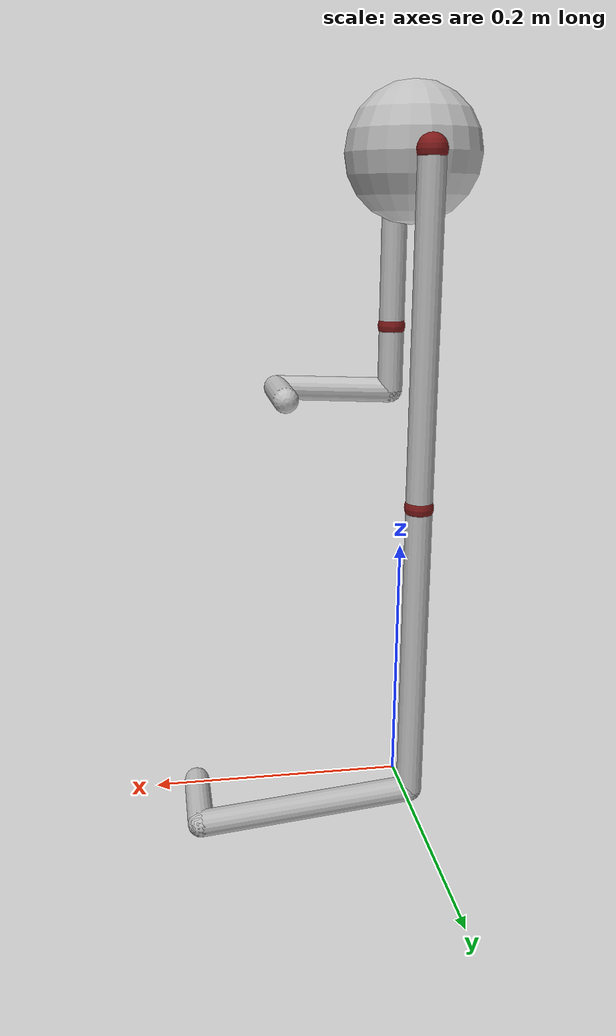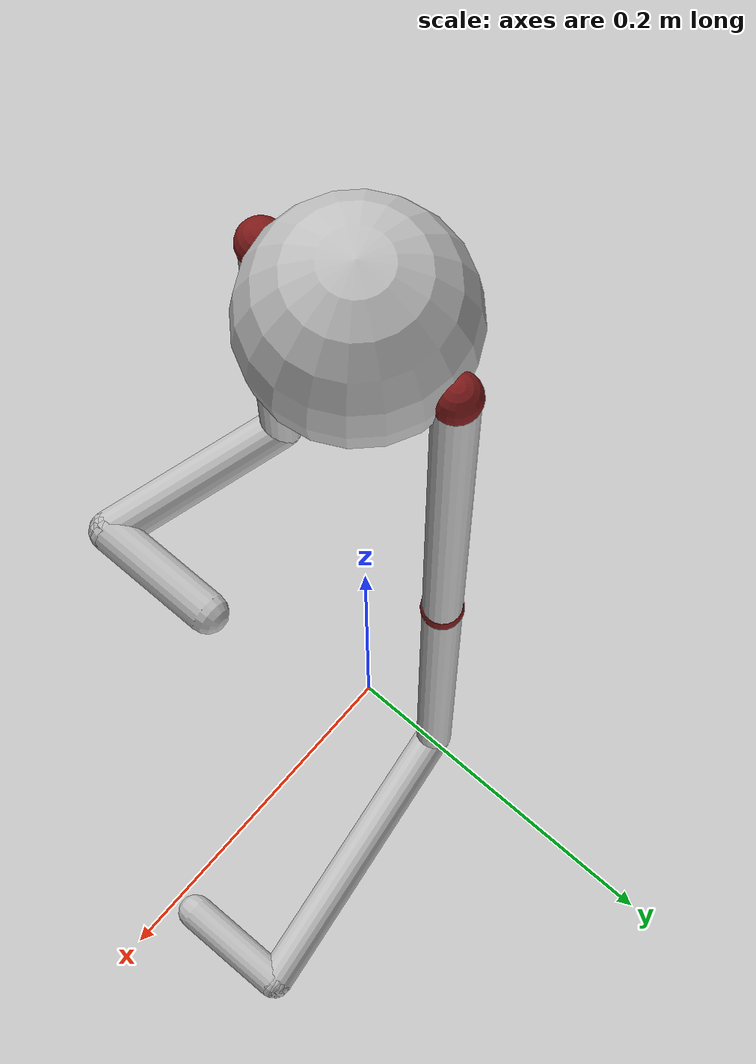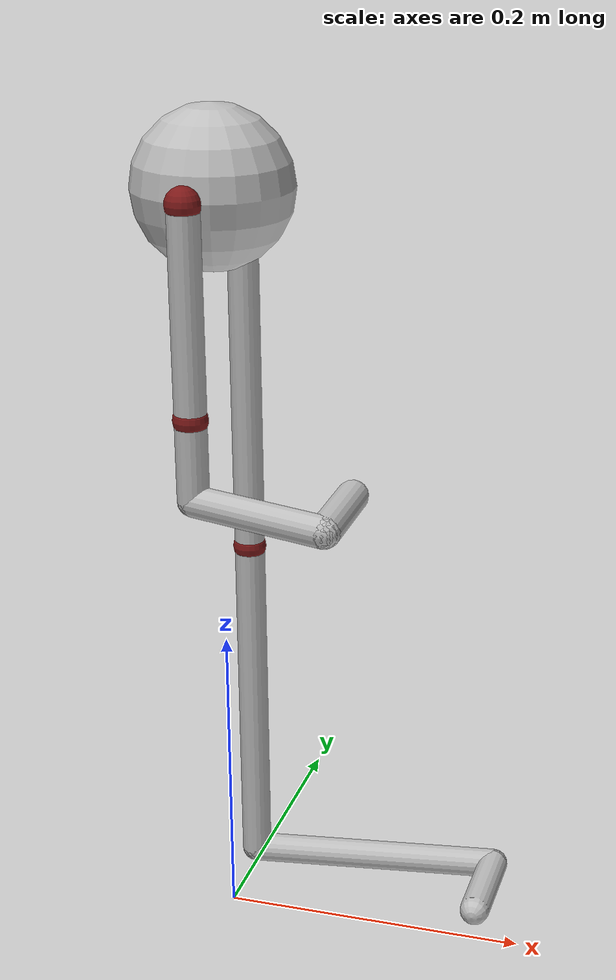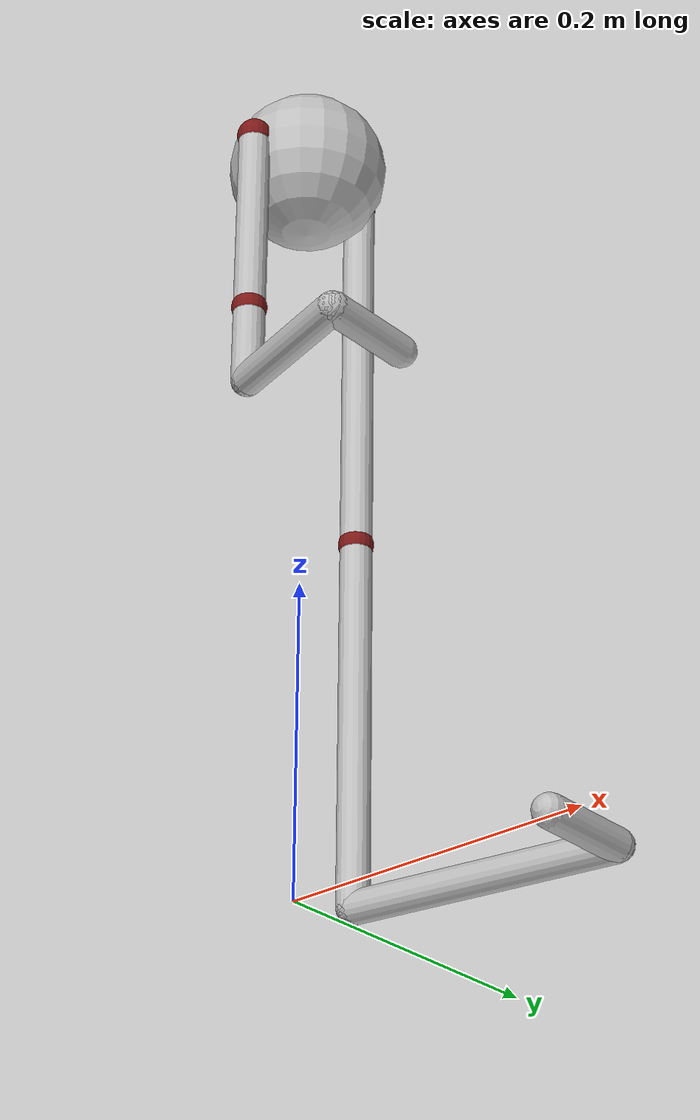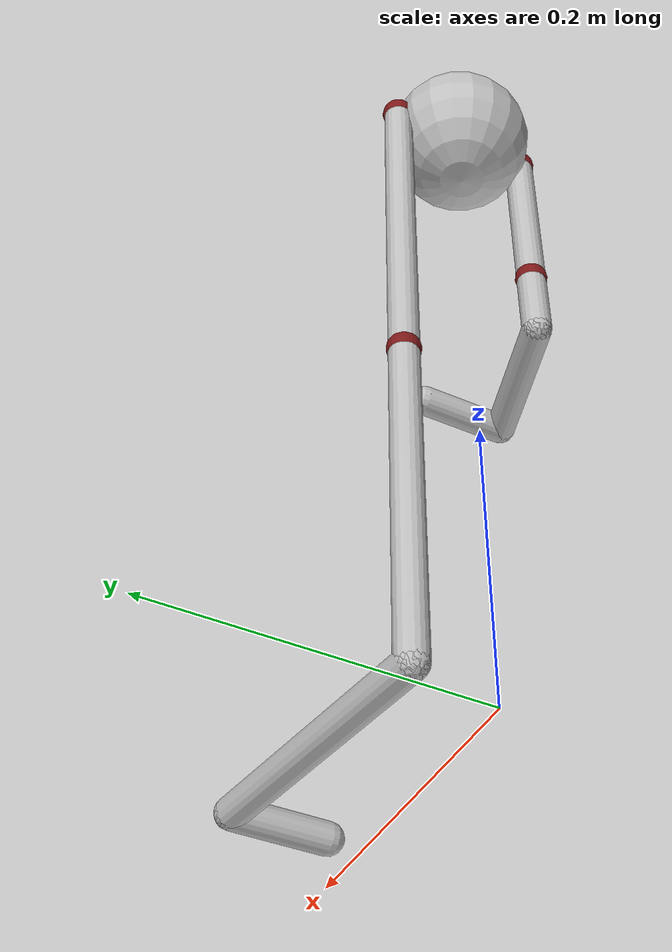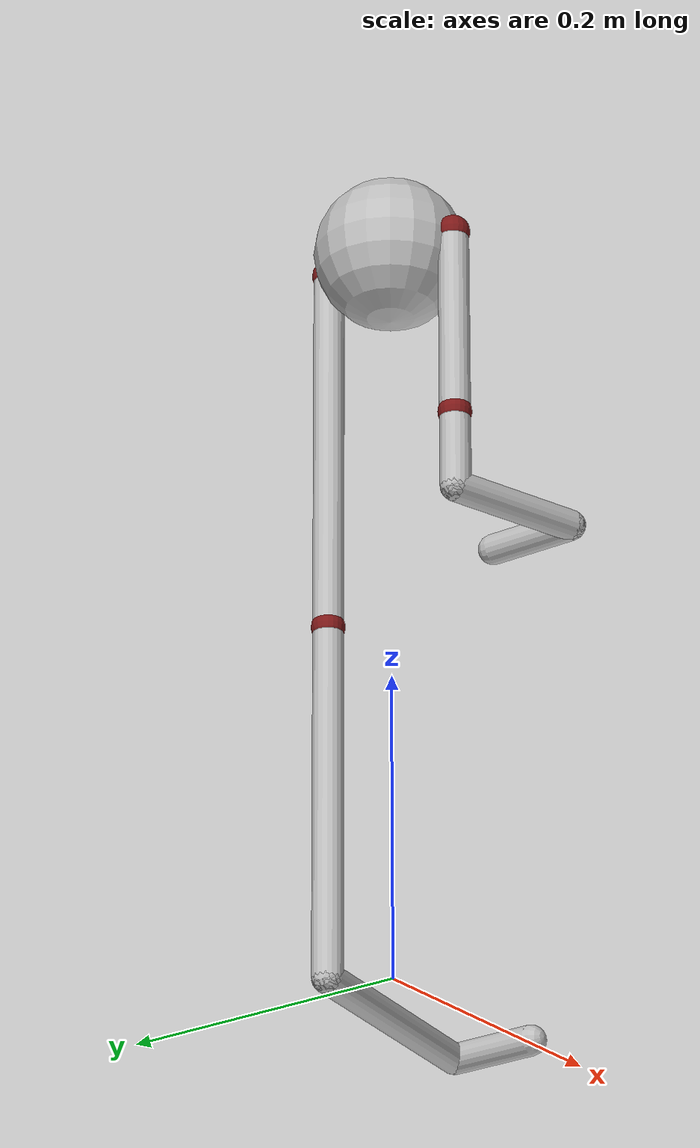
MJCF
<?xml version="1.0" ?>
<mujoco>
    <default>
        <joint armature="0.0" damping="0.01" type="hinge" range="-150 0" axis="0 -1 0"/>
        <geom condim="3" friction="1.5 1.0 1.0" margin="0.001"/>
        <default class="motor">
            <cylinder gear="100" ctrllimited="true" ctrlrange="-1 1"/>
        </default>
    </default>
    <worldbody>
        <body name="Base" pos="0.0 0.0 0.498880929837746">
            <joint type="free"/>
            <geom type="sphere" rgba="0.75 0.75 0.75 1.0" size="0.05" mass="0.02"/>
            <body name="rod_0.1" pos="0.0 -0.05 -0.0647251323270818">
                <geom name="geom_0.1" type="capsule" fromto="-0.0 -0.0 0.0647251323270818 0.0 0.0 -0.0647251323270818" size="0.01" rgba="0.75 0.75 0.75 1.0" density="159.15494309189535"/>
                <site name="site_0.1" pos="0 0 0" quat="0.7071067811865476 -0.0 0.7071067811865476 0.0"/>
                <joint name="joint_Base=rod_0.1" pos="-0.0 -0.0 0.0647251323270818" range="-45 45"/>
                <body name="p0" pos="-0.0 -0.0 0.0647251323270818">
                    <geom type="sphere" size="0.011000000000000001" rgba="0.5 0.1 0.1 1.0" density="23873.2414637843"/>
                    <site name="p0"/>
                </body>
                <body name="rod_1.2" pos="0.0 0.0 -0.09071107731625658">
                    <geom name="geom_1.2" type="capsule" fromto="-0.0 -0.0 0.02598594498917478 0.0 0.0 -0.02598594498917478" size="0.01" rgba="0.75 0.75 0.75 1.0" density="159.15494309189535"/>
                    <site name="site_1.2" pos="0 0 0" quat="0.7071067811865476 -0.0 0.7071067811865476 0.0"/>
                    <joint name="joint_rod_0.1=rod_1.2" pos="-0.0 -0.0 0.02598594498917478" range="-150 0"/>
                    <body name="p1" pos="-0.0 -0.0 0.02598594498917478">
                        <geom type="sphere" size="0.011000000000000001" rgba="0.5 0.1 0.1 1.0" density="23873.2414637843"/>
                        <site name="p1"/>
                    </body>
                    <body name="rod_2.3" pos="0.04519836004416103 -0.012500000000000004 -0.02598594498917478">
                        <geom name="geom_2.3" type="capsule" fromto="-0.04519836004416103 0.012500000000000004 -0.0 0.04519836004416103 -0.012500000000000004 0.0" size="0.01" rgba="0.75 0.75 0.75 1.0" density="159.15494309189535"/>
                        <site name="site_2.3" pos="0 0 0" quat="0.9909137933898128 0.0 0.0 -0.1344985281325097"/>
                        <body name="rod_3.4" pos="0.04519836004416103 0.017499999999999995 0.0">
                            <geom name="geom_3.4" type="capsule" fromto="-0.0 -0.03 -0.0 0.0 0.03 0.0" size="0.01" rgba="0.75 0.75 0.75 1.0" density="159.15494309189535"/>
                            <site name="site_3.4" pos="0 0 0" quat="0.7071067811865476 0.0 0.0 0.7071067811865476"/>
                        </body>
                    </body>
                </body>
            </body>
            <body name="rod_5.6" pos="0.0 0.05 -0.1258892964007334">
                <geom name="geom_5.6" type="capsule" fromto="-0.0 -0.0 0.1258892964007334 0.0 0.0 -0.1258892964007334" size="0.01" rgba="0.75 0.75 0.75 1.0" density="159.15494309189535"/>
                <site name="site_5.6" pos="0 0 0" quat="0.7071067811865476 -0.0 0.7071067811865476 0.0"/>
                <joint name="joint_Base=rod_5.6" pos="-0.0 -0.0 0.1258892964007334" range="-45 45"/>
                <body name="p5" pos="-0.0 -0.0 0.1258892964007334">
                    <geom type="sphere" size="0.011000000000000001" rgba="0.5 0.1 0.1 1.0" density="23873.2414637843"/>
                    <site name="p5"/>
                </body>
                <body name="rod_6.7" pos="0.0 0.0 -0.243690464918873">
                    <geom name="geom_6.7" type="capsule" fromto="-0.0 -0.0 0.1178011685181396 0.0 0.0 -0.1178011685181396" size="0.01" rgba="0.75 0.75 0.75 1.0" density="159.15494309189535"/>
                    <site name="site_6.7" pos="0 0 0" quat="0.7071067811865476 -0.0 0.7071067811865476 0.0"/>
                    <joint name="joint_rod_5.6=rod_6.7" pos="-0.0 -0.0 0.1178011685181396" range="-150 0"/>
                    <body name="p6" pos="-0.0 -0.0 0.1178011685181396">
                        <geom type="sphere" size="0.011000000000000001" rgba="0.5 0.1 0.1 1.0" density="23873.2414637843"/>
                        <site name="p6"/>
                    </body>
                    <body name="rod_7.8" pos="0.08388914565069797 0.012500000000000004 -0.1178011685181396">
                        <geom name="geom_7.8" type="capsule" fromto="-0.08388914565069797 -0.012500000000000004 -0.0 0.08388914565069797 0.012500000000000004 0.0" size="0.01" rgba="0.75 0.75 0.75 1.0" density="159.15494309189535"/>
                        <site name="site_7.8" pos="0 0 0" quat="0.9972662854497278 0.0 0.0 0.0738915144336751"/>
                        <body name="rod_8.9" pos="0.08388914565069797 -0.017499999999999995 0.0">
                            <geom name="geom_8.9" type="capsule" fromto="-0.0 0.03 -0.0 0.0 -0.03 0.0" size="0.01" rgba="0.75 0.75 0.75 1.0" density="159.15494309189535"/>
                            <site name="site_8.9" pos="0 0 0" quat="0.7071067811865476 0.0 0.0 -0.7071067811865476"/>
                        </body>
                    </body>
                </body>
            </body>
        </body>
    </worldbody>
    <actuator/>
    <sensor>
        <accelerometer site="site_0.1"/>
        <gyro site="site_0.1"/>
        <magnetometer site="site_0.1"/>
        <accelerometer site="site_1.2"/>
        <gyro site="site_1.2"/>
        <magnetometer site="site_1.2"/>
        <accelerometer site="site_2.3"/>
        <gyro site="site_2.3"/>
        <magnetometer site="site_2.3"/>
        <accelerometer site="site_3.4"/>
        <gyro site="site_3.4"/>
        <magnetometer site="site_3.4"/>
        <accelerometer site="site_5.6"/>
        <gyro site="site_5.6"/>
        <magnetometer site="site_5.6"/>
        <accelerometer site="site_6.7"/>
        <gyro site="site_6.7"/>
        <magnetometer site="site_6.7"/>
        <accelerometer site="site_7.8"/>
        <gyro site="site_7.8"/>
        <magnetometer site="site_7.8"/>
        <accelerometer site="site_8.9"/>
        <gyro site="site_8.9"/>
        <magnetometer site="site_8.9"/>
    </sensor>
    <contact>
        <pair geom1="geom_0.1" geom2="floor"/>
        <pair geom1="geom_1.2" geom2="floor"/>
        <pair geom1="geom_2.3" geom2="floor"/>
        <pair geom1="geom_3.4" geom2="floor"/>
        <pair geom1="geom_5.6" geom2="floor"/>
        <pair geom1="geom_6.7" geom2="floor"/>
        <pair geom1="geom_7.8" geom2="floor"/>
        <pair geom1="geom_8.9" geom2="floor"/>
    </contact>
</mujoco>
